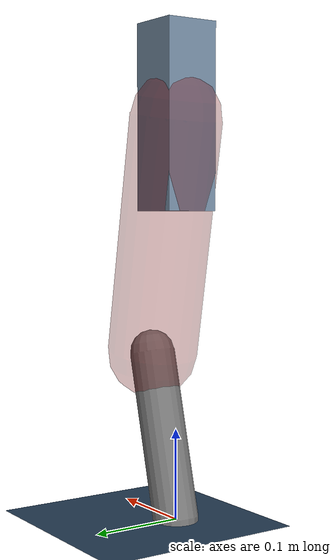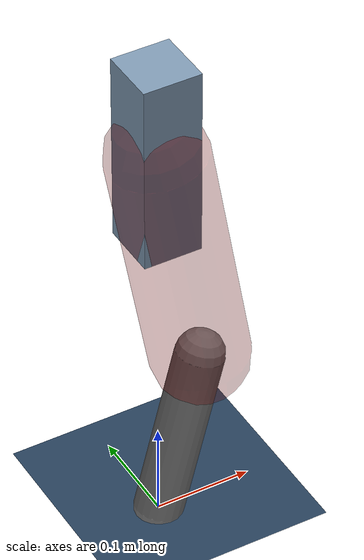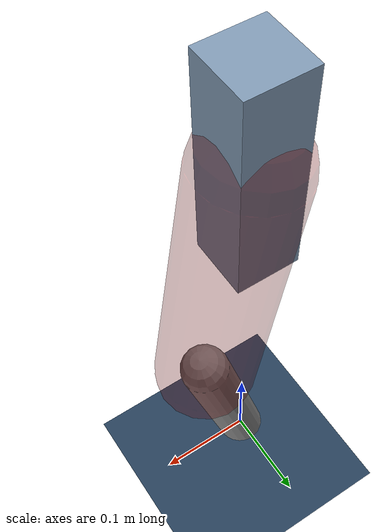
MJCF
<mujoco model="Hopper2D">
	<compiler inertiafromgeom="true" angle="radian" />
	<option timestep="0.001" integrator="implicit" cone="elliptic" solver="Newton" tolerance="1e-10" />

	<default>
		<geom contype="1" conaffinity="1" condim="3" friction="2 0.005 0.0001" solref="0.005 1" />
		<joint limited="true" damping="0.1" />
	</default>

	<asset>
		<texture name="skybox" type="skybox" builtin="gradient" rgb1=".4 .6 .8" rgb2="0 0 0" width="800" height="800" />
		<texture name="grid" type="2d" builtin="checker" rgb1=".1 .2 .3" rgb2=".2 .3 .4" width="300" height="300" mark="edge" markrgb=".2 .3 .4" />
		<material name="ground" texture="grid" texrepeat="1 1" texuniform="true" reflectance="0.1" />
		<material name="leg" rgba="0.5 0.6 0.7 1" />
	</asset>

	<worldbody>

		<geom name="floor" type="plane" size="5 5 0.25" material="ground" />

		<light directional="false" diffuse="0.8 0.8 0.8" specular="0.3 0.3 0.3" pos="0 0 2" dir="0 0 -1" />
		<light mode="targetbodycom" target="base" directional="false" diffuse="0.8 0.8 0.8" specular="0.3 0.3 0.3" pos="0 0 2" dir="0 0 -1" />

		<camera name="fixed" pos="0 -2 1" xyaxes="1 0 0 0 0 1" />
		<camera name="tracking" mode="trackcom" pos="0 -3 1" />

		<body name="root" pos="0 0 0.4376501143235645">
			<joint name="slide_x" type="slide" axis="1 0 0" range="-100 100" />
			<joint name="slide_z" type="slide" axis="0 0 1" range="0 10" />

			<body name="base" pos="0 0 0">
				<geom name="torso" type="box" size="0.03 0.03 0.1" mass="2.841" material="leg" />

				<body name="link1" pos="0 0 0" euler="0 1.3927168766957652 0">
					<joint type="hinge" axis="0 -1 0" pos="0 0 0" name="hinge1" limited="true" range="-3.14 3.14" stiffness="0" damping="0.1" />
					<geom name="thigh" type="capsule" fromto="0 0 0 0.2615961592538394 0 0" size="0.05" rgba="0.5 0 0 0.3" mass="0.8865500140599823" />

					<body name="link2" pos="0.2615961592538394 0 0" euler="0 0.42979162540333193 0">
						<joint type="hinge" axis="0 -1 0" pos="0 0 0" name="hinge2" limited="true" range="-3.14 3.14" stiffness="0" damping="0.1" />
						<geom name="shank" type="capsule" fromto="0 0 0 0.18605395506972508 0 0" size="0.025" mass="0.3890485595627526" />

					</body>
				</body>
			</body>
		</body>
	</worldbody>

	<actuator>
		<motor name="torque1" joint="hinge1" ctrlrange="-138.3227569630784 138.3227569630784" ctrllimited="true" gear="1" />
		<motor name="torque2" joint="hinge2" ctrlrange="-97.42151320922784 97.42151320922784" ctrllimited="true" gear="1" />
	</actuator>
</mujoco>
